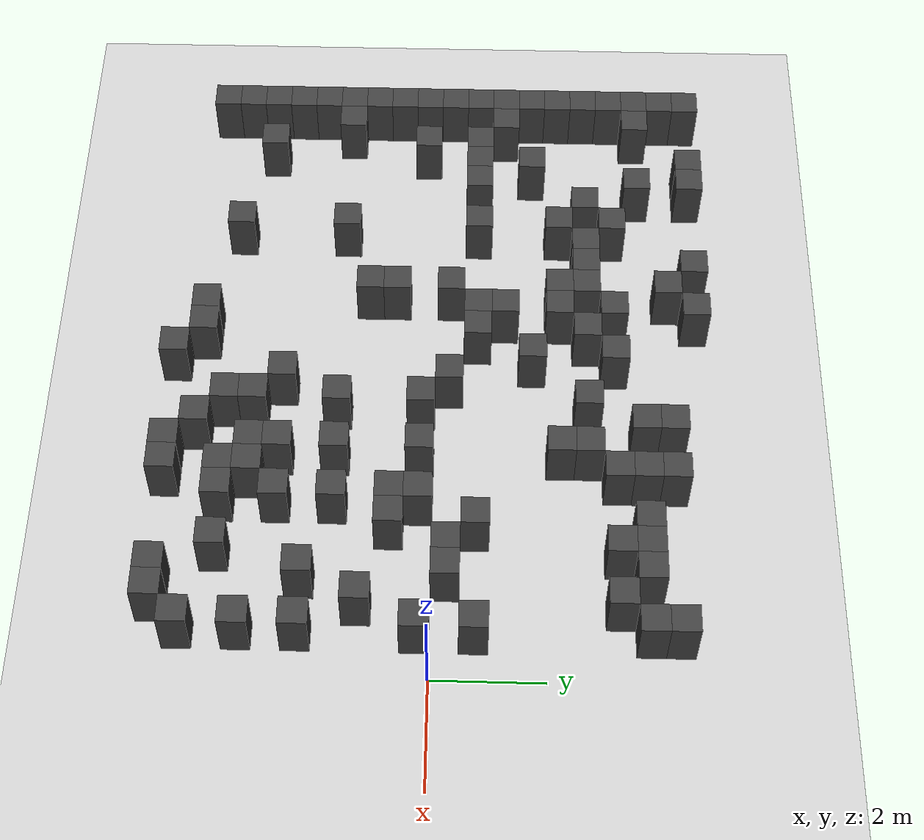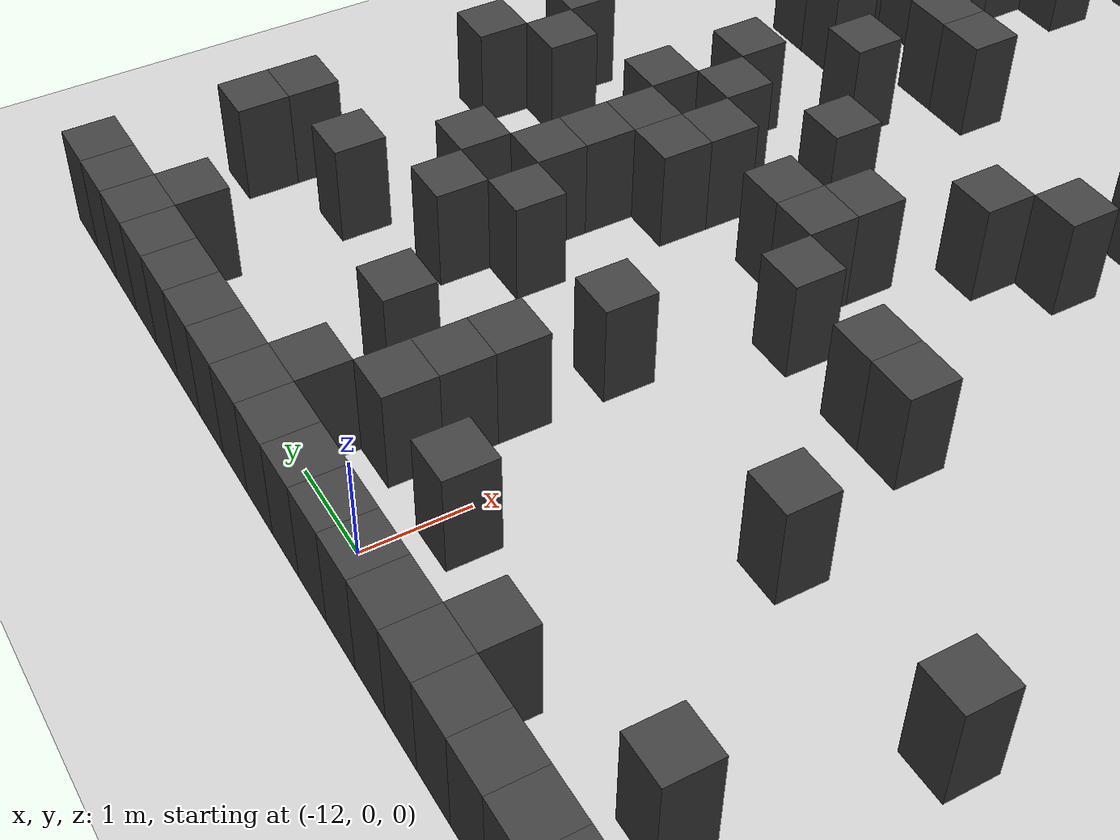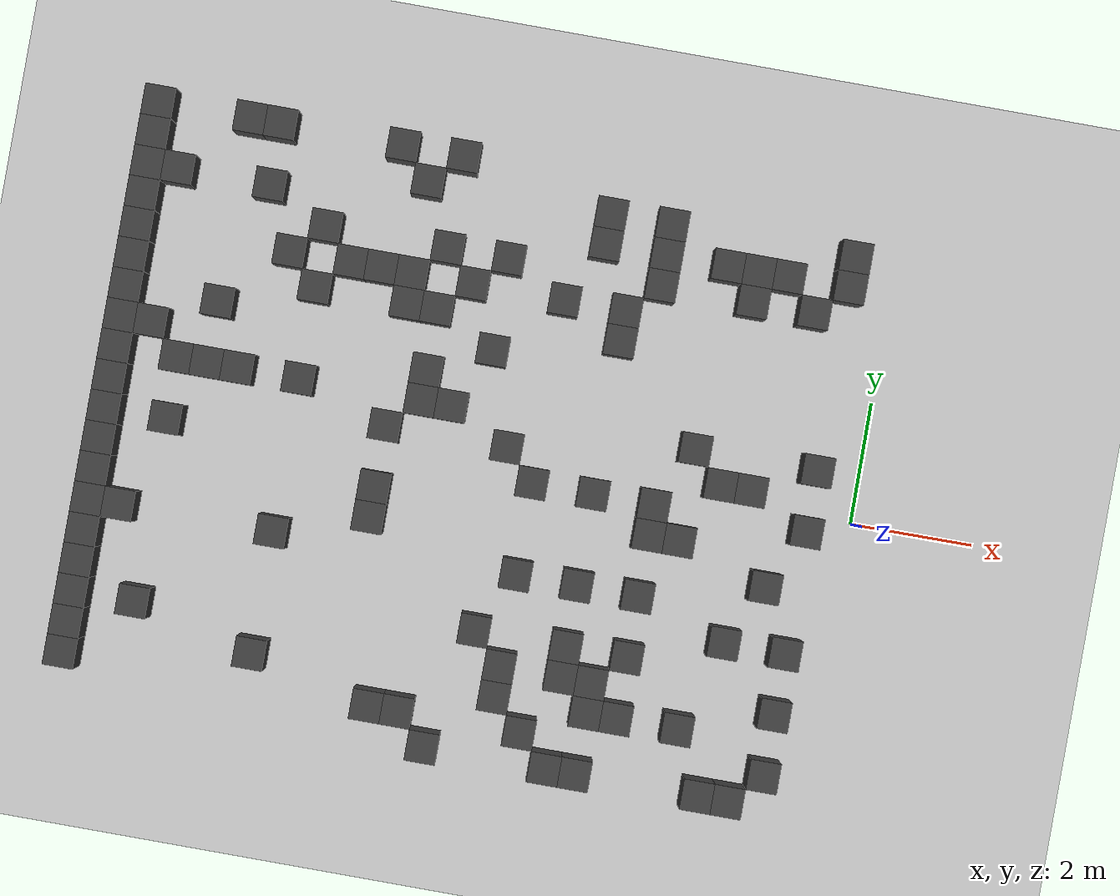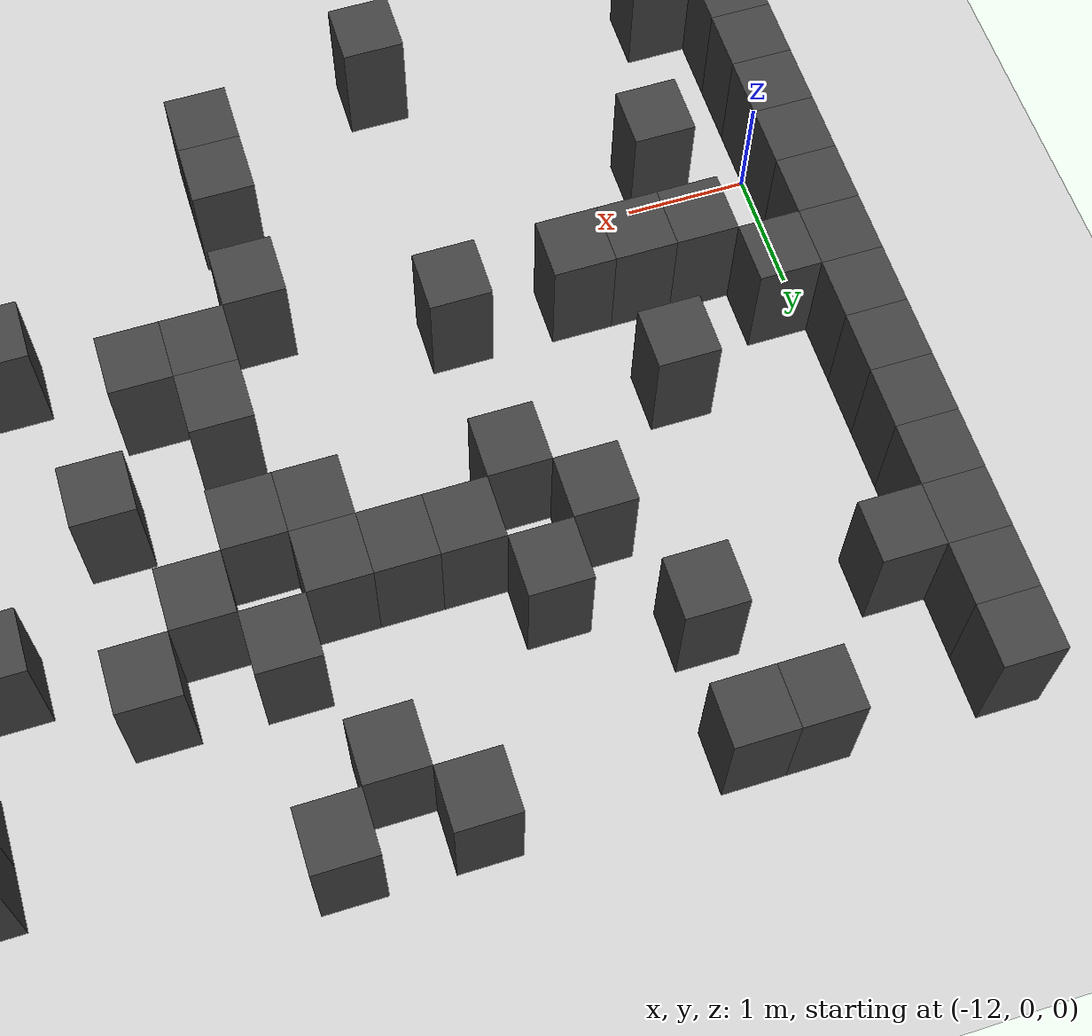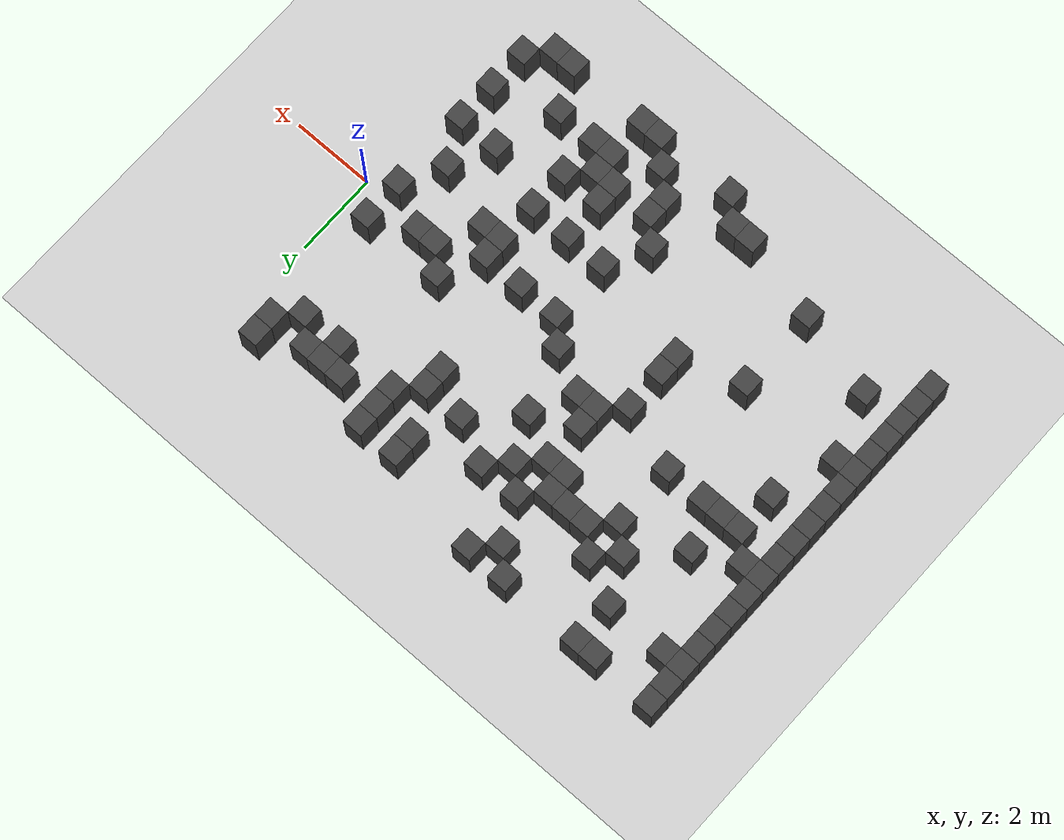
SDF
<sdf version="1.7">
 <world name="map_3955">
  <model name="ground_plane">
   <static>true</static>
   <link name="link">
    <collision name="collision">
     <geometry><plane><normal>0 0 1</normal><size>200 200</size></plane></geometry>
    </collision>
    <visual name="visual">
     <geometry><plane><normal>0 0 1</normal><size>200 200</size></plane></geometry>
     <material><ambient>0.8 0.8 0.8 1</ambient><diffuse>0.8 0.8 0.8 1</diffuse></material>
    </visual>
   </link>
  </model>
  <model name="maze_environment">
   <static>true</static>
   <link name="wall_212">
    <pose>-12.250 4.750 0.500 0 0 0</pose>
    <collision name="col"><geometry><box><size>0.5 0.5 1.0</size></box></geometry></collision>
    <visual name="vis">
     <geometry><box><size>0.5 0.5 1.0</size></box></geometry>
     <material><ambient>0.15 0.15 0.15 1</ambient><diffuse>0.25 0.25 0.25 1</diffuse></material>
    </visual>
   </link>
   <link name="wall_213">
    <pose>-10.750 4.750 0.500 0 0 0</pose>
    <collision name="col"><geometry><box><size>0.5 0.5 1.0</size></box></geometry></collision>
    <visual name="vis">
     <geometry><box><size>0.5 0.5 1.0</size></box></geometry>
     <material><ambient>0.15 0.15 0.15 1</ambient><diffuse>0.25 0.25 0.25 1</diffuse></material>
    </visual>
   </link>
   <link name="wall_214">
    <pose>-10.250 4.750 0.500 0 0 0</pose>
    <collision name="col"><geometry><box><size>0.5 0.5 1.0</size></box></geometry></collision>
    <visual name="vis">
     <geometry><box><size>0.5 0.5 1.0</size></box></geometry>
     <material><ambient>0.15 0.15 0.15 1</ambient><diffuse>0.25 0.25 0.25 1</diffuse></material>
    </visual>
   </link>
   <link name="wall_215">
    <pose>-8.250 4.750 0.500 0 0 0</pose>
    <collision name="col"><geometry><box><size>0.5 0.5 1.0</size></box></geometry></collision>
    <visual name="vis">
     <geometry><box><size>0.5 0.5 1.0</size></box></geometry>
     <material><ambient>0.15 0.15 0.15 1</ambient><diffuse>0.25 0.25 0.25 1</diffuse></material>
    </visual>
   </link>
   <link name="wall_216">
    <pose>-7.250 4.750 0.500 0 0 0</pose>
    <collision name="col"><geometry><box><size>0.5 0.5 1.0</size></box></geometry></collision>
    <visual name="vis">
     <geometry><box><size>0.5 0.5 1.0</size></box></geometry>
     <material><ambient>0.15 0.15 0.15 1</ambient><diffuse>0.25 0.25 0.25 1</diffuse></material>
    </visual>
   </link>
   <link name="wall_228">
    <pose>-12.250 4.250 0.500 0 0 0</pose>
    <collision name="col"><geometry><box><size>0.5 0.5 1.0</size></box></geometry></collision>
    <visual name="vis">
     <geometry><box><size>0.5 0.5 1.0</size></box></geometry>
     <material><ambient>0.15 0.15 0.15 1</ambient><diffuse>0.25 0.25 0.25 1</diffuse></material>
    </visual>
   </link>
   <link name="wall_229">
    <pose>-7.750 4.250 0.500 0 0 0</pose>
    <collision name="col"><geometry><box><size>0.5 0.5 1.0</size></box></geometry></collision>
    <visual name="vis">
     <geometry><box><size>0.5 0.5 1.0</size></box></geometry>
     <material><ambient>0.15 0.15 0.15 1</ambient><diffuse>0.25 0.25 0.25 1</diffuse></material>
    </visual>
   </link>
   <link name="wall_230">
    <pose>-4.750 4.250 0.500 0 0 0</pose>
    <collision name="col"><geometry><box><size>0.5 0.5 1.0</size></box></geometry></collision>
    <visual name="vis">
     <geometry><box><size>0.5 0.5 1.0</size></box></geometry>
     <material><ambient>0.15 0.15 0.15 1</ambient><diffuse>0.25 0.25 0.25 1</diffuse></material>
    </visual>
   </link>
   <link name="wall_231">
    <pose>-3.750 4.250 0.500 0 0 0</pose>
    <collision name="col"><geometry><box><size>0.5 0.5 1.0</size></box></geometry></collision>
    <visual name="vis">
     <geometry><box><size>0.5 0.5 1.0</size></box></geometry>
     <material><ambient>0.15 0.15 0.15 1</ambient><diffuse>0.25 0.25 0.25 1</diffuse></material>
    </visual>
   </link>
   <link name="wall_232">
    <pose>-0.750 4.250 0.500 0 0 0</pose>
    <collision name="col"><geometry><box><size>0.5 0.5 1.0</size></box></geometry></collision>
    <visual name="vis">
     <geometry><box><size>0.5 0.5 1.0</size></box></geometry>
     <material><ambient>0.15 0.15 0.15 1</ambient><diffuse>0.25 0.25 0.25 1</diffuse></material>
    </visual>
   </link>
   <link name="wall_241">
    <pose>-12.250 3.750 0.500 0 0 0</pose>
    <collision name="col"><geometry><box><size>0.5 0.5 1.0</size></box></geometry></collision>
    <visual name="vis">
     <geometry><box><size>0.5 0.5 1.0</size></box></geometry>
     <material><ambient>0.15 0.15 0.15 1</ambient><diffuse>0.25 0.25 0.25 1</diffuse></material>
    </visual>
   </link>
   <link name="wall_242">
    <pose>-11.750 3.750 0.500 0 0 0</pose>
    <collision name="col"><geometry><box><size>0.5 0.5 1.0</size></box></geometry></collision>
    <visual name="vis">
     <geometry><box><size>0.5 0.5 1.0</size></box></geometry>
     <material><ambient>0.15 0.15 0.15 1</ambient><diffuse>0.25 0.25 0.25 1</diffuse></material>
    </visual>
   </link>
   <link name="wall_243">
    <pose>-10.250 3.750 0.500 0 0 0</pose>
    <collision name="col"><geometry><box><size>0.5 0.5 1.0</size></box></geometry></collision>
    <visual name="vis">
     <geometry><box><size>0.5 0.5 1.0</size></box></geometry>
     <material><ambient>0.15 0.15 0.15 1</ambient><diffuse>0.25 0.25 0.25 1</diffuse></material>
    </visual>
   </link>
   <link name="wall_244">
    <pose>-4.750 3.750 0.500 0 0 0</pose>
    <collision name="col"><geometry><box><size>0.5 0.5 1.0</size></box></geometry></collision>
    <visual name="vis">
     <geometry><box><size>0.5 0.5 1.0</size></box></geometry>
     <material><ambient>0.15 0.15 0.15 1</ambient><diffuse>0.25 0.25 0.25 1</diffuse></material>
    </visual>
   </link>
   <link name="wall_245">
    <pose>-3.750 3.750 0.500 0 0 0</pose>
    <collision name="col"><geometry><box><size>0.5 0.5 1.0</size></box></geometry></collision>
    <visual name="vis">
     <geometry><box><size>0.5 0.5 1.0</size></box></geometry>
     <material><ambient>0.15 0.15 0.15 1</ambient><diffuse>0.25 0.25 0.25 1</diffuse></material>
    </visual>
   </link>
   <link name="wall_246">
    <pose>-2.750 3.750 0.500 0 0 0</pose>
    <collision name="col"><geometry><box><size>0.5 0.5 1.0</size></box></geometry></collision>
    <visual name="vis">
     <geometry><box><size>0.5 0.5 1.0</size></box></geometry>
     <material><ambient>0.15 0.15 0.15 1</ambient><diffuse>0.25 0.25 0.25 1</diffuse></material>
    </visual>
   </link>
   <link name="wall_247">
    <pose>-2.250 3.750 0.500 0 0 0</pose>
    <collision name="col"><geometry><box><size>0.5 0.5 1.0</size></box></geometry></collision>
    <visual name="vis">
     <geometry><box><size>0.5 0.5 1.0</size></box></geometry>
     <material><ambient>0.15 0.15 0.15 1</ambient><diffuse>0.25 0.25 0.25 1</diffuse></material>
    </visual>
   </link>
   <link name="wall_248">
    <pose>-1.750 3.750 0.500 0 0 0</pose>
    <collision name="col"><geometry><box><size>0.5 0.5 1.0</size></box></geometry></collision>
    <visual name="vis">
     <geometry><box><size>0.5 0.5 1.0</size></box></geometry>
     <material><ambient>0.15 0.15 0.15 1</ambient><diffuse>0.25 0.25 0.25 1</diffuse></material>
    </visual>
   </link>
   <link name="wall_249">
    <pose>-0.750 3.750 0.500 0 0 0</pose>
    <collision name="col"><geometry><box><size>0.5 0.5 1.0</size></box></geometry></collision>
    <visual name="vis">
     <geometry><box><size>0.5 0.5 1.0</size></box></geometry>
     <material><ambient>0.15 0.15 0.15 1</ambient><diffuse>0.25 0.25 0.25 1</diffuse></material>
    </visual>
   </link>
   <link name="wall_253">
    <pose>-12.250 3.250 0.500 0 0 0</pose>
    <collision name="col"><geometry><box><size>0.5 0.5 1.0</size></box></geometry></collision>
    <visual name="vis">
     <geometry><box><size>0.5 0.5 1.0</size></box></geometry>
     <material><ambient>0.15 0.15 0.15 1</ambient><diffuse>0.25 0.25 0.25 1</diffuse></material>
    </visual>
   </link>
   <link name="wall_254">
    <pose>-9.250 3.250 0.500 0 0 0</pose>
    <collision name="col"><geometry><box><size>0.5 0.5 1.0</size></box></geometry></collision>
    <visual name="vis">
     <geometry><box><size>0.5 0.5 1.0</size></box></geometry>
     <material><ambient>0.15 0.15 0.15 1</ambient><diffuse>0.25 0.25 0.25 1</diffuse></material>
    </visual>
   </link>
   <link name="wall_255">
    <pose>-7.250 3.250 0.500 0 0 0</pose>
    <collision name="col"><geometry><box><size>0.5 0.5 1.0</size></box></geometry></collision>
    <visual name="vis">
     <geometry><box><size>0.5 0.5 1.0</size></box></geometry>
     <material><ambient>0.15 0.15 0.15 1</ambient><diffuse>0.25 0.25 0.25 1</diffuse></material>
    </visual>
   </link>
   <link name="wall_256">
    <pose>-6.250 3.250 0.500 0 0 0</pose>
    <collision name="col"><geometry><box><size>0.5 0.5 1.0</size></box></geometry></collision>
    <visual name="vis">
     <geometry><box><size>0.5 0.5 1.0</size></box></geometry>
     <material><ambient>0.15 0.15 0.15 1</ambient><diffuse>0.25 0.25 0.25 1</diffuse></material>
    </visual>
   </link>
   <link name="wall_257">
    <pose>-3.750 3.250 0.500 0 0 0</pose>
    <collision name="col"><geometry><box><size>0.5 0.5 1.0</size></box></geometry></collision>
    <visual name="vis">
     <geometry><box><size>0.5 0.5 1.0</size></box></geometry>
     <material><ambient>0.15 0.15 0.15 1</ambient><diffuse>0.25 0.25 0.25 1</diffuse></material>
    </visual>
   </link>
   <link name="wall_258">
    <pose>-2.250 3.250 0.500 0 0 0</pose>
    <collision name="col"><geometry><box><size>0.5 0.5 1.0</size></box></geometry></collision>
    <visual name="vis">
     <geometry><box><size>0.5 0.5 1.0</size></box></geometry>
     <material><ambient>0.15 0.15 0.15 1</ambient><diffuse>0.25 0.25 0.25 1</diffuse></material>
    </visual>
   </link>
   <link name="wall_259">
    <pose>-1.250 3.250 0.500 0 0 0</pose>
    <collision name="col"><geometry><box><size>0.5 0.5 1.0</size></box></geometry></collision>
    <visual name="vis">
     <geometry><box><size>0.5 0.5 1.0</size></box></geometry>
     <material><ambient>0.15 0.15 0.15 1</ambient><diffuse>0.25 0.25 0.25 1</diffuse></material>
    </visual>
   </link>
   <link name="wall_264">
    <pose>-12.250 2.750 0.500 0 0 0</pose>
    <collision name="col"><geometry><box><size>0.5 0.5 1.0</size></box></geometry></collision>
    <visual name="vis">
     <geometry><box><size>0.5 0.5 1.0</size></box></geometry>
     <material><ambient>0.15 0.15 0.15 1</ambient><diffuse>0.25 0.25 0.25 1</diffuse></material>
    </visual>
   </link>
   <link name="wall_265">
    <pose>-9.750 2.750 0.500 0 0 0</pose>
    <collision name="col"><geometry><box><size>0.5 0.5 1.0</size></box></geometry></collision>
    <visual name="vis">
     <geometry><box><size>0.5 0.5 1.0</size></box></geometry>
     <material><ambient>0.15 0.15 0.15 1</ambient><diffuse>0.25 0.25 0.25 1</diffuse></material>
    </visual>
   </link>
   <link name="wall_266">
    <pose>-8.750 2.750 0.500 0 0 0</pose>
    <collision name="col"><geometry><box><size>0.5 0.5 1.0</size></box></geometry></collision>
    <visual name="vis">
     <geometry><box><size>0.5 0.5 1.0</size></box></geometry>
     <material><ambient>0.15 0.15 0.15 1</ambient><diffuse>0.25 0.25 0.25 1</diffuse></material>
    </visual>
   </link>
   <link name="wall_267">
    <pose>-8.250 2.750 0.500 0 0 0</pose>
    <collision name="col"><geometry><box><size>0.5 0.5 1.0</size></box></geometry></collision>
    <visual name="vis">
     <geometry><box><size>0.5 0.5 1.0</size></box></geometry>
     <material><ambient>0.15 0.15 0.15 1</ambient><diffuse>0.25 0.25 0.25 1</diffuse></material>
    </visual>
   </link>
   <link name="wall_268">
    <pose>-7.750 2.750 0.500 0 0 0</pose>
    <collision name="col"><geometry><box><size>0.5 0.5 1.0</size></box></geometry></collision>
    <visual name="vis">
     <geometry><box><size>0.5 0.5 1.0</size></box></geometry>
     <material><ambient>0.15 0.15 0.15 1</ambient><diffuse>0.25 0.25 0.25 1</diffuse></material>
    </visual>
   </link>
   <link name="wall_269">
    <pose>-6.750 2.750 0.500 0 0 0</pose>
    <collision name="col"><geometry><box><size>0.5 0.5 1.0</size></box></geometry></collision>
    <visual name="vis">
     <geometry><box><size>0.5 0.5 1.0</size></box></geometry>
     <material><ambient>0.15 0.15 0.15 1</ambient><diffuse>0.25 0.25 0.25 1</diffuse></material>
    </visual>
   </link>
   <link name="wall_270">
    <pose>-5.250 2.750 0.500 0 0 0</pose>
    <collision name="col"><geometry><box><size>0.5 0.5 1.0</size></box></geometry></collision>
    <visual name="vis">
     <geometry><box><size>0.5 0.5 1.0</size></box></geometry>
     <material><ambient>0.15 0.15 0.15 1</ambient><diffuse>0.25 0.25 0.25 1</diffuse></material>
    </visual>
   </link>
   <link name="wall_271">
    <pose>-4.250 2.750 0.500 0 0 0</pose>
    <collision name="col"><geometry><box><size>0.5 0.5 1.0</size></box></geometry></collision>
    <visual name="vis">
     <geometry><box><size>0.5 0.5 1.0</size></box></geometry>
     <material><ambient>0.15 0.15 0.15 1</ambient><diffuse>0.25 0.25 0.25 1</diffuse></material>
    </visual>
   </link>
   <link name="wall_279">
    <pose>-12.250 2.250 0.500 0 0 0</pose>
    <collision name="col"><geometry><box><size>0.5 0.5 1.0</size></box></geometry></collision>
    <visual name="vis">
     <geometry><box><size>0.5 0.5 1.0</size></box></geometry>
     <material><ambient>0.15 0.15 0.15 1</ambient><diffuse>0.25 0.25 0.25 1</diffuse></material>
    </visual>
   </link>
   <link name="wall_280">
    <pose>-9.250 2.250 0.500 0 0 0</pose>
    <collision name="col"><geometry><box><size>0.5 0.5 1.0</size></box></geometry></collision>
    <visual name="vis">
     <geometry><box><size>0.5 0.5 1.0</size></box></geometry>
     <material><ambient>0.15 0.15 0.15 1</ambient><diffuse>0.25 0.25 0.25 1</diffuse></material>
    </visual>
   </link>
   <link name="wall_281">
    <pose>-7.750 2.250 0.500 0 0 0</pose>
    <collision name="col"><geometry><box><size>0.5 0.5 1.0</size></box></geometry></collision>
    <visual name="vis">
     <geometry><box><size>0.5 0.5 1.0</size></box></geometry>
     <material><ambient>0.15 0.15 0.15 1</ambient><diffuse>0.25 0.25 0.25 1</diffuse></material>
    </visual>
   </link>
   <link name="wall_282">
    <pose>-7.250 2.250 0.500 0 0 0</pose>
    <collision name="col"><geometry><box><size>0.5 0.5 1.0</size></box></geometry></collision>
    <visual name="vis">
     <geometry><box><size>0.5 0.5 1.0</size></box></geometry>
     <material><ambient>0.15 0.15 0.15 1</ambient><diffuse>0.25 0.25 0.25 1</diffuse></material>
    </visual>
   </link>
   <link name="wall_283">
    <pose>-4.250 2.250 0.500 0 0 0</pose>
    <collision name="col"><geometry><box><size>0.5 0.5 1.0</size></box></geometry></collision>
    <visual name="vis">
     <geometry><box><size>0.5 0.5 1.0</size></box></geometry>
     <material><ambient>0.15 0.15 0.15 1</ambient><diffuse>0.25 0.25 0.25 1</diffuse></material>
    </visual>
   </link>
   <link name="wall_290">
    <pose>-12.250 1.750 0.500 0 0 0</pose>
    <collision name="col"><geometry><box><size>0.5 0.5 1.0</size></box></geometry></collision>
    <visual name="vis">
     <geometry><box><size>0.5 0.5 1.0</size></box></geometry>
     <material><ambient>0.15 0.15 0.15 1</ambient><diffuse>0.25 0.25 0.25 1</diffuse></material>
    </visual>
   </link>
   <link name="wall_291">
    <pose>-10.750 1.750 0.500 0 0 0</pose>
    <collision name="col"><geometry><box><size>0.5 0.5 1.0</size></box></geometry></collision>
    <visual name="vis">
     <geometry><box><size>0.5 0.5 1.0</size></box></geometry>
     <material><ambient>0.15 0.15 0.15 1</ambient><diffuse>0.25 0.25 0.25 1</diffuse></material>
    </visual>
   </link>
   <link name="wall_292">
    <pose>-6.250 1.750 0.500 0 0 0</pose>
    <collision name="col"><geometry><box><size>0.5 0.5 1.0</size></box></geometry></collision>
    <visual name="vis">
     <geometry><box><size>0.5 0.5 1.0</size></box></geometry>
     <material><ambient>0.15 0.15 0.15 1</ambient><diffuse>0.25 0.25 0.25 1</diffuse></material>
    </visual>
   </link>
   <link name="wall_297">
    <pose>-12.250 1.250 0.500 0 0 0</pose>
    <collision name="col"><geometry><box><size>0.5 0.5 1.0</size></box></geometry></collision>
    <visual name="vis">
     <geometry><box><size>0.5 0.5 1.0</size></box></geometry>
     <material><ambient>0.15 0.15 0.15 1</ambient><diffuse>0.25 0.25 0.25 1</diffuse></material>
    </visual>
   </link>
   <link name="wall_298">
    <pose>-11.750 1.250 0.500 0 0 0</pose>
    <collision name="col"><geometry><box><size>0.5 0.5 1.0</size></box></geometry></collision>
    <visual name="vis">
     <geometry><box><size>0.5 0.5 1.0</size></box></geometry>
     <material><ambient>0.15 0.15 0.15 1</ambient><diffuse>0.25 0.25 0.25 1</diffuse></material>
    </visual>
   </link>
   <link name="wall_299">
    <pose>-7.250 1.250 0.500 0 0 0</pose>
    <collision name="col"><geometry><box><size>0.5 0.5 1.0</size></box></geometry></collision>
    <visual name="vis">
     <geometry><box><size>0.5 0.5 1.0</size></box></geometry>
     <material><ambient>0.15 0.15 0.15 1</ambient><diffuse>0.25 0.25 0.25 1</diffuse></material>
    </visual>
   </link>
   <link name="wall_306">
    <pose>-12.250 0.750 0.500 0 0 0</pose>
    <collision name="col"><geometry><box><size>0.5 0.5 1.0</size></box></geometry></collision>
    <visual name="vis">
     <geometry><box><size>0.5 0.5 1.0</size></box></geometry>
     <material><ambient>0.15 0.15 0.15 1</ambient><diffuse>0.25 0.25 0.25 1</diffuse></material>
    </visual>
   </link>
   <link name="wall_307">
    <pose>-11.250 0.750 0.500 0 0 0</pose>
    <collision name="col"><geometry><box><size>0.5 0.5 1.0</size></box></geometry></collision>
    <visual name="vis">
     <geometry><box><size>0.5 0.5 1.0</size></box></geometry>
     <material><ambient>0.15 0.15 0.15 1</ambient><diffuse>0.25 0.25 0.25 1</diffuse></material>
    </visual>
   </link>
   <link name="wall_308">
    <pose>-10.750 0.750 0.500 0 0 0</pose>
    <collision name="col"><geometry><box><size>0.5 0.5 1.0</size></box></geometry></collision>
    <visual name="vis">
     <geometry><box><size>0.5 0.5 1.0</size></box></geometry>
     <material><ambient>0.15 0.15 0.15 1</ambient><diffuse>0.25 0.25 0.25 1</diffuse></material>
    </visual>
   </link>
   <link name="wall_309">
    <pose>-10.250 0.750 0.500 0 0 0</pose>
    <collision name="col"><geometry><box><size>0.5 0.5 1.0</size></box></geometry></collision>
    <visual name="vis">
     <geometry><box><size>0.5 0.5 1.0</size></box></geometry>
     <material><ambient>0.15 0.15 0.15 1</ambient><diffuse>0.25 0.25 0.25 1</diffuse></material>
    </visual>
   </link>
   <link name="wall_310">
    <pose>-9.250 0.750 0.500 0 0 0</pose>
    <collision name="col"><geometry><box><size>0.5 0.5 1.0</size></box></geometry></collision>
    <visual name="vis">
     <geometry><box><size>0.5 0.5 1.0</size></box></geometry>
     <material><ambient>0.15 0.15 0.15 1</ambient><diffuse>0.25 0.25 0.25 1</diffuse></material>
    </visual>
   </link>
   <link name="wall_311">
    <pose>-7.250 0.750 0.500 0 0 0</pose>
    <collision name="col"><geometry><box><size>0.5 0.5 1.0</size></box></geometry></collision>
    <visual name="vis">
     <geometry><box><size>0.5 0.5 1.0</size></box></geometry>
     <material><ambient>0.15 0.15 0.15 1</ambient><diffuse>0.25 0.25 0.25 1</diffuse></material>
    </visual>
   </link>
   <link name="wall_312">
    <pose>-6.750 0.750 0.500 0 0 0</pose>
    <collision name="col"><geometry><box><size>0.5 0.5 1.0</size></box></geometry></collision>
    <visual name="vis">
     <geometry><box><size>0.5 0.5 1.0</size></box></geometry>
     <material><ambient>0.15 0.15 0.15 1</ambient><diffuse>0.25 0.25 0.25 1</diffuse></material>
    </visual>
   </link>
   <link name="wall_313">
    <pose>-2.750 0.750 0.500 0 0 0</pose>
    <collision name="col"><geometry><box><size>0.5 0.5 1.0</size></box></geometry></collision>
    <visual name="vis">
     <geometry><box><size>0.5 0.5 1.0</size></box></geometry>
     <material><ambient>0.15 0.15 0.15 1</ambient><diffuse>0.25 0.25 0.25 1</diffuse></material>
    </visual>
   </link>
   <link name="wall_314">
    <pose>-0.750 0.750 0.500 0 0 0</pose>
    <collision name="col"><geometry><box><size>0.5 0.5 1.0</size></box></geometry></collision>
    <visual name="vis">
     <geometry><box><size>0.5 0.5 1.0</size></box></geometry>
     <material><ambient>0.15 0.15 0.15 1</ambient><diffuse>0.25 0.25 0.25 1</diffuse></material>
    </visual>
   </link>
   <link name="wall_316">
    <pose>-12.250 0.250 0.500 0 0 0</pose>
    <collision name="col"><geometry><box><size>0.5 0.5 1.0</size></box></geometry></collision>
    <visual name="vis">
     <geometry><box><size>0.5 0.5 1.0</size></box></geometry>
     <material><ambient>0.15 0.15 0.15 1</ambient><diffuse>0.25 0.25 0.25 1</diffuse></material>
    </visual>
   </link>
   <link name="wall_317">
    <pose>-7.750 0.250 0.500 0 0 0</pose>
    <collision name="col"><geometry><box><size>0.5 0.5 1.0</size></box></geometry></collision>
    <visual name="vis">
     <geometry><box><size>0.5 0.5 1.0</size></box></geometry>
     <material><ambient>0.15 0.15 0.15 1</ambient><diffuse>0.25 0.25 0.25 1</diffuse></material>
    </visual>
   </link>
   <link name="wall_318">
    <pose>-5.750 0.250 0.500 0 0 0</pose>
    <collision name="col"><geometry><box><size>0.5 0.5 1.0</size></box></geometry></collision>
    <visual name="vis">
     <geometry><box><size>0.5 0.5 1.0</size></box></geometry>
     <material><ambient>0.15 0.15 0.15 1</ambient><diffuse>0.25 0.25 0.25 1</diffuse></material>
    </visual>
   </link>
   <link name="wall_319">
    <pose>-2.250 0.250 0.500 0 0 0</pose>
    <collision name="col"><geometry><box><size>0.5 0.5 1.0</size></box></geometry></collision>
    <visual name="vis">
     <geometry><box><size>0.5 0.5 1.0</size></box></geometry>
     <material><ambient>0.15 0.15 0.15 1</ambient><diffuse>0.25 0.25 0.25 1</diffuse></material>
    </visual>
   </link>
   <link name="wall_320">
    <pose>-1.750 0.250 0.500 0 0 0</pose>
    <collision name="col"><geometry><box><size>0.5 0.5 1.0</size></box></geometry></collision>
    <visual name="vis">
     <geometry><box><size>0.5 0.5 1.0</size></box></geometry>
     <material><ambient>0.15 0.15 0.15 1</ambient><diffuse>0.25 0.25 0.25 1</diffuse></material>
    </visual>
   </link>
   <link name="wall_325">
    <pose>-12.250 -0.250 0.500 0 0 0</pose>
    <collision name="col"><geometry><box><size>0.5 0.5 1.0</size></box></geometry></collision>
    <visual name="vis">
     <geometry><box><size>0.5 0.5 1.0</size></box></geometry>
     <material><ambient>0.15 0.15 0.15 1</ambient><diffuse>0.25 0.25 0.25 1</diffuse></material>
    </visual>
   </link>
   <link name="wall_326">
    <pose>-11.250 -0.250 0.500 0 0 0</pose>
    <collision name="col"><geometry><box><size>0.5 0.5 1.0</size></box></geometry></collision>
    <visual name="vis">
     <geometry><box><size>0.5 0.5 1.0</size></box></geometry>
     <material><ambient>0.15 0.15 0.15 1</ambient><diffuse>0.25 0.25 0.25 1</diffuse></material>
    </visual>
   </link>
   <link name="wall_327">
    <pose>-5.250 -0.250 0.500 0 0 0</pose>
    <collision name="col"><geometry><box><size>0.5 0.5 1.0</size></box></geometry></collision>
    <visual name="vis">
     <geometry><box><size>0.5 0.5 1.0</size></box></geometry>
     <material><ambient>0.15 0.15 0.15 1</ambient><diffuse>0.25 0.25 0.25 1</diffuse></material>
    </visual>
   </link>
   <link name="wall_328">
    <pose>-4.250 -0.250 0.500 0 0 0</pose>
    <collision name="col"><geometry><box><size>0.5 0.5 1.0</size></box></geometry></collision>
    <visual name="vis">
     <geometry><box><size>0.5 0.5 1.0</size></box></geometry>
     <material><ambient>0.15 0.15 0.15 1</ambient><diffuse>0.25 0.25 0.25 1</diffuse></material>
    </visual>
   </link>
   <link name="wall_329">
    <pose>-3.250 -0.250 0.500 0 0 0</pose>
    <collision name="col"><geometry><box><size>0.5 0.5 1.0</size></box></geometry></collision>
    <visual name="vis">
     <geometry><box><size>0.5 0.5 1.0</size></box></geometry>
     <material><ambient>0.15 0.15 0.15 1</ambient><diffuse>0.25 0.25 0.25 1</diffuse></material>
    </visual>
   </link>
   <link name="wall_330">
    <pose>-0.750 -0.250 0.500 0 0 0</pose>
    <collision name="col"><geometry><box><size>0.5 0.5 1.0</size></box></geometry></collision>
    <visual name="vis">
     <geometry><box><size>0.5 0.5 1.0</size></box></geometry>
     <material><ambient>0.15 0.15 0.15 1</ambient><diffuse>0.25 0.25 0.25 1</diffuse></material>
    </visual>
   </link>
   <link name="wall_333">
    <pose>-12.250 -0.750 0.500 0 0 0</pose>
    <collision name="col"><geometry><box><size>0.5 0.5 1.0</size></box></geometry></collision>
    <visual name="vis">
     <geometry><box><size>0.5 0.5 1.0</size></box></geometry>
     <material><ambient>0.15 0.15 0.15 1</ambient><diffuse>0.25 0.25 0.25 1</diffuse></material>
    </visual>
   </link>
   <link name="wall_334">
    <pose>-7.750 -0.750 0.500 0 0 0</pose>
    <collision name="col"><geometry><box><size>0.5 0.5 1.0</size></box></geometry></collision>
    <visual name="vis">
     <geometry><box><size>0.5 0.5 1.0</size></box></geometry>
     <material><ambient>0.15 0.15 0.15 1</ambient><diffuse>0.25 0.25 0.25 1</diffuse></material>
    </visual>
   </link>
   <link name="wall_335">
    <pose>-3.250 -0.750 0.500 0 0 0</pose>
    <collision name="col"><geometry><box><size>0.5 0.5 1.0</size></box></geometry></collision>
    <visual name="vis">
     <geometry><box><size>0.5 0.5 1.0</size></box></geometry>
     <material><ambient>0.15 0.15 0.15 1</ambient><diffuse>0.25 0.25 0.25 1</diffuse></material>
    </visual>
   </link>
   <link name="wall_336">
    <pose>-2.750 -0.750 0.500 0 0 0</pose>
    <collision name="col"><geometry><box><size>0.5 0.5 1.0</size></box></geometry></collision>
    <visual name="vis">
     <geometry><box><size>0.5 0.5 1.0</size></box></geometry>
     <material><ambient>0.15 0.15 0.15 1</ambient><diffuse>0.25 0.25 0.25 1</diffuse></material>
    </visual>
   </link>
   <link name="wall_339">
    <pose>-12.250 -1.250 0.500 0 0 0</pose>
    <collision name="col"><geometry><box><size>0.5 0.5 1.0</size></box></geometry></collision>
    <visual name="vis">
     <geometry><box><size>0.5 0.5 1.0</size></box></geometry>
     <material><ambient>0.15 0.15 0.15 1</ambient><diffuse>0.25 0.25 0.25 1</diffuse></material>
    </visual>
   </link>
   <link name="wall_340">
    <pose>-7.750 -1.250 0.500 0 0 0</pose>
    <collision name="col"><geometry><box><size>0.5 0.5 1.0</size></box></geometry></collision>
    <visual name="vis">
     <geometry><box><size>0.5 0.5 1.0</size></box></geometry>
     <material><ambient>0.15 0.15 0.15 1</ambient><diffuse>0.25 0.25 0.25 1</diffuse></material>
    </visual>
   </link>
   <link name="wall_341">
    <pose>-1.250 -1.250 0.500 0 0 0</pose>
    <collision name="col"><geometry><box><size>0.5 0.5 1.0</size></box></geometry></collision>
    <visual name="vis">
     <geometry><box><size>0.5 0.5 1.0</size></box></geometry>
     <material><ambient>0.15 0.15 0.15 1</ambient><diffuse>0.25 0.25 0.25 1</diffuse></material>
    </visual>
   </link>
   <link name="wall_350">
    <pose>-12.250 -1.750 0.500 0 0 0</pose>
    <collision name="col"><geometry><box><size>0.5 0.5 1.0</size></box></geometry></collision>
    <visual name="vis">
     <geometry><box><size>0.5 0.5 1.0</size></box></geometry>
     <material><ambient>0.15 0.15 0.15 1</ambient><diffuse>0.25 0.25 0.25 1</diffuse></material>
    </visual>
   </link>
   <link name="wall_351">
    <pose>-11.750 -1.750 0.500 0 0 0</pose>
    <collision name="col"><geometry><box><size>0.5 0.5 1.0</size></box></geometry></collision>
    <visual name="vis">
     <geometry><box><size>0.5 0.5 1.0</size></box></geometry>
     <material><ambient>0.15 0.15 0.15 1</ambient><diffuse>0.25 0.25 0.25 1</diffuse></material>
    </visual>
   </link>
   <link name="wall_352">
    <pose>-9.250 -1.750 0.500 0 0 0</pose>
    <collision name="col"><geometry><box><size>0.5 0.5 1.0</size></box></geometry></collision>
    <visual name="vis">
     <geometry><box><size>0.5 0.5 1.0</size></box></geometry>
     <material><ambient>0.15 0.15 0.15 1</ambient><diffuse>0.25 0.25 0.25 1</diffuse></material>
    </visual>
   </link>
   <link name="wall_353">
    <pose>-5.250 -1.750 0.500 0 0 0</pose>
    <collision name="col"><geometry><box><size>0.5 0.5 1.0</size></box></geometry></collision>
    <visual name="vis">
     <geometry><box><size>0.5 0.5 1.0</size></box></geometry>
     <material><ambient>0.15 0.15 0.15 1</ambient><diffuse>0.25 0.25 0.25 1</diffuse></material>
    </visual>
   </link>
   <link name="wall_354">
    <pose>-4.250 -1.750 0.500 0 0 0</pose>
    <collision name="col"><geometry><box><size>0.5 0.5 1.0</size></box></geometry></collision>
    <visual name="vis">
     <geometry><box><size>0.5 0.5 1.0</size></box></geometry>
     <material><ambient>0.15 0.15 0.15 1</ambient><diffuse>0.25 0.25 0.25 1</diffuse></material>
    </visual>
   </link>
   <link name="wall_355">
    <pose>-3.250 -1.750 0.500 0 0 0</pose>
    <collision name="col"><geometry><box><size>0.5 0.5 1.0</size></box></geometry></collision>
    <visual name="vis">
     <geometry><box><size>0.5 0.5 1.0</size></box></geometry>
     <material><ambient>0.15 0.15 0.15 1</ambient><diffuse>0.25 0.25 0.25 1</diffuse></material>
    </visual>
   </link>
   <link name="wall_362">
    <pose>-12.250 -2.250 0.500 0 0 0</pose>
    <collision name="col"><geometry><box><size>0.5 0.5 1.0</size></box></geometry></collision>
    <visual name="vis">
     <geometry><box><size>0.5 0.5 1.0</size></box></geometry>
     <material><ambient>0.15 0.15 0.15 1</ambient><diffuse>0.25 0.25 0.25 1</diffuse></material>
    </visual>
   </link>
   <link name="wall_363">
    <pose>-1.750 -2.250 0.500 0 0 0</pose>
    <collision name="col"><geometry><box><size>0.5 0.5 1.0</size></box></geometry></collision>
    <visual name="vis">
     <geometry><box><size>0.5 0.5 1.0</size></box></geometry>
     <material><ambient>0.15 0.15 0.15 1</ambient><diffuse>0.25 0.25 0.25 1</diffuse></material>
    </visual>
   </link>
   <link name="wall_364">
    <pose>-0.750 -2.250 0.500 0 0 0</pose>
    <collision name="col"><geometry><box><size>0.5 0.5 1.0</size></box></geometry></collision>
    <visual name="vis">
     <geometry><box><size>0.5 0.5 1.0</size></box></geometry>
     <material><ambient>0.15 0.15 0.15 1</ambient><diffuse>0.25 0.25 0.25 1</diffuse></material>
    </visual>
   </link>
   <link name="wall_372">
    <pose>-12.250 -2.750 0.500 0 0 0</pose>
    <collision name="col"><geometry><box><size>0.5 0.5 1.0</size></box></geometry></collision>
    <visual name="vis">
     <geometry><box><size>0.5 0.5 1.0</size></box></geometry>
     <material><ambient>0.15 0.15 0.15 1</ambient><diffuse>0.25 0.25 0.25 1</diffuse></material>
    </visual>
   </link>
   <link name="wall_373">
    <pose>-5.750 -2.750 0.500 0 0 0</pose>
    <collision name="col"><geometry><box><size>0.5 0.5 1.0</size></box></geometry></collision>
    <visual name="vis">
     <geometry><box><size>0.5 0.5 1.0</size></box></geometry>
     <material><ambient>0.15 0.15 0.15 1</ambient><diffuse>0.25 0.25 0.25 1</diffuse></material>
    </visual>
   </link>
   <link name="wall_374">
    <pose>-4.250 -2.750 0.500 0 0 0</pose>
    <collision name="col"><geometry><box><size>0.5 0.5 1.0</size></box></geometry></collision>
    <visual name="vis">
     <geometry><box><size>0.5 0.5 1.0</size></box></geometry>
     <material><ambient>0.15 0.15 0.15 1</ambient><diffuse>0.25 0.25 0.25 1</diffuse></material>
    </visual>
   </link>
   <link name="wall_375">
    <pose>-3.250 -2.750 0.500 0 0 0</pose>
    <collision name="col"><geometry><box><size>0.5 0.5 1.0</size></box></geometry></collision>
    <visual name="vis">
     <geometry><box><size>0.5 0.5 1.0</size></box></geometry>
     <material><ambient>0.15 0.15 0.15 1</ambient><diffuse>0.25 0.25 0.25 1</diffuse></material>
    </visual>
   </link>
   <link name="wall_383">
    <pose>-12.250 -3.250 0.500 0 0 0</pose>
    <collision name="col"><geometry><box><size>0.5 0.5 1.0</size></box></geometry></collision>
    <visual name="vis">
     <geometry><box><size>0.5 0.5 1.0</size></box></geometry>
     <material><ambient>0.15 0.15 0.15 1</ambient><diffuse>0.25 0.25 0.25 1</diffuse></material>
    </visual>
   </link>
   <link name="wall_384">
    <pose>-11.250 -3.250 0.500 0 0 0</pose>
    <collision name="col"><geometry><box><size>0.5 0.5 1.0</size></box></geometry></collision>
    <visual name="vis">
     <geometry><box><size>0.5 0.5 1.0</size></box></geometry>
     <material><ambient>0.15 0.15 0.15 1</ambient><diffuse>0.25 0.25 0.25 1</diffuse></material>
    </visual>
   </link>
   <link name="wall_385">
    <pose>-5.250 -3.250 0.500 0 0 0</pose>
    <collision name="col"><geometry><box><size>0.5 0.5 1.0</size></box></geometry></collision>
    <visual name="vis">
     <geometry><box><size>0.5 0.5 1.0</size></box></geometry>
     <material><ambient>0.15 0.15 0.15 1</ambient><diffuse>0.25 0.25 0.25 1</diffuse></material>
    </visual>
   </link>
   <link name="wall_386">
    <pose>-4.250 -3.250 0.500 0 0 0</pose>
    <collision name="col"><geometry><box><size>0.5 0.5 1.0</size></box></geometry></collision>
    <visual name="vis">
     <geometry><box><size>0.5 0.5 1.0</size></box></geometry>
     <material><ambient>0.15 0.15 0.15 1</ambient><diffuse>0.25 0.25 0.25 1</diffuse></material>
    </visual>
   </link>
   <link name="wall_387">
    <pose>-3.750 -3.250 0.500 0 0 0</pose>
    <collision name="col"><geometry><box><size>0.5 0.5 1.0</size></box></geometry></collision>
    <visual name="vis">
     <geometry><box><size>0.5 0.5 1.0</size></box></geometry>
     <material><ambient>0.15 0.15 0.15 1</ambient><diffuse>0.25 0.25 0.25 1</diffuse></material>
    </visual>
   </link>
   <link name="wall_388">
    <pose>-0.750 -3.250 0.500 0 0 0</pose>
    <collision name="col"><geometry><box><size>0.5 0.5 1.0</size></box></geometry></collision>
    <visual name="vis">
     <geometry><box><size>0.5 0.5 1.0</size></box></geometry>
     <material><ambient>0.15 0.15 0.15 1</ambient><diffuse>0.25 0.25 0.25 1</diffuse></material>
    </visual>
   </link>
   <link name="wall_392">
    <pose>-12.250 -3.750 0.500 0 0 0</pose>
    <collision name="col"><geometry><box><size>0.5 0.5 1.0</size></box></geometry></collision>
    <visual name="vis">
     <geometry><box><size>0.5 0.5 1.0</size></box></geometry>
     <material><ambient>0.15 0.15 0.15 1</ambient><diffuse>0.25 0.25 0.25 1</diffuse></material>
    </visual>
   </link>
   <link name="wall_393">
    <pose>-9.250 -3.750 0.500 0 0 0</pose>
    <collision name="col"><geometry><box><size>0.5 0.5 1.0</size></box></geometry></collision>
    <visual name="vis">
     <geometry><box><size>0.5 0.5 1.0</size></box></geometry>
     <material><ambient>0.15 0.15 0.15 1</ambient><diffuse>0.25 0.25 0.25 1</diffuse></material>
    </visual>
   </link>
   <link name="wall_394">
    <pose>-5.250 -3.750 0.500 0 0 0</pose>
    <collision name="col"><geometry><box><size>0.5 0.5 1.0</size></box></geometry></collision>
    <visual name="vis">
     <geometry><box><size>0.5 0.5 1.0</size></box></geometry>
     <material><ambient>0.15 0.15 0.15 1</ambient><diffuse>0.25 0.25 0.25 1</diffuse></material>
    </visual>
   </link>
   <link name="wall_395">
    <pose>-3.750 -3.750 0.500 0 0 0</pose>
    <collision name="col"><geometry><box><size>0.5 0.5 1.0</size></box></geometry></collision>
    <visual name="vis">
     <geometry><box><size>0.5 0.5 1.0</size></box></geometry>
     <material><ambient>0.15 0.15 0.15 1</ambient><diffuse>0.25 0.25 0.25 1</diffuse></material>
    </visual>
   </link>
   <link name="wall_396">
    <pose>-3.250 -3.750 0.500 0 0 0</pose>
    <collision name="col"><geometry><box><size>0.5 0.5 1.0</size></box></geometry></collision>
    <visual name="vis">
     <geometry><box><size>0.5 0.5 1.0</size></box></geometry>
     <material><ambient>0.15 0.15 0.15 1</ambient><diffuse>0.25 0.25 0.25 1</diffuse></material>
    </visual>
   </link>
   <link name="wall_397">
    <pose>-2.250 -3.750 0.500 0 0 0</pose>
    <collision name="col"><geometry><box><size>0.5 0.5 1.0</size></box></geometry></collision>
    <visual name="vis">
     <geometry><box><size>0.5 0.5 1.0</size></box></geometry>
     <material><ambient>0.15 0.15 0.15 1</ambient><diffuse>0.25 0.25 0.25 1</diffuse></material>
    </visual>
   </link>
   <link name="wall_404">
    <pose>-12.250 -4.250 0.500 0 0 0</pose>
    <collision name="col"><geometry><box><size>0.5 0.5 1.0</size></box></geometry></collision>
    <visual name="vis">
     <geometry><box><size>0.5 0.5 1.0</size></box></geometry>
     <material><ambient>0.15 0.15 0.15 1</ambient><diffuse>0.25 0.25 0.25 1</diffuse></material>
    </visual>
   </link>
   <link name="wall_405">
    <pose>-7.250 -4.250 0.500 0 0 0</pose>
    <collision name="col"><geometry><box><size>0.5 0.5 1.0</size></box></geometry></collision>
    <visual name="vis">
     <geometry><box><size>0.5 0.5 1.0</size></box></geometry>
     <material><ambient>0.15 0.15 0.15 1</ambient><diffuse>0.25 0.25 0.25 1</diffuse></material>
    </visual>
   </link>
   <link name="wall_406">
    <pose>-6.750 -4.250 0.500 0 0 0</pose>
    <collision name="col"><geometry><box><size>0.5 0.5 1.0</size></box></geometry></collision>
    <visual name="vis">
     <geometry><box><size>0.5 0.5 1.0</size></box></geometry>
     <material><ambient>0.15 0.15 0.15 1</ambient><diffuse>0.25 0.25 0.25 1</diffuse></material>
    </visual>
   </link>
   <link name="wall_407">
    <pose>-4.750 -4.250 0.500 0 0 0</pose>
    <collision name="col"><geometry><box><size>0.5 0.5 1.0</size></box></geometry></collision>
    <visual name="vis">
     <geometry><box><size>0.5 0.5 1.0</size></box></geometry>
     <material><ambient>0.15 0.15 0.15 1</ambient><diffuse>0.25 0.25 0.25 1</diffuse></material>
    </visual>
   </link>
   <link name="wall_408">
    <pose>-0.750 -4.250 0.500 0 0 0</pose>
    <collision name="col"><geometry><box><size>0.5 0.5 1.0</size></box></geometry></collision>
    <visual name="vis">
     <geometry><box><size>0.5 0.5 1.0</size></box></geometry>
     <material><ambient>0.15 0.15 0.15 1</ambient><diffuse>0.25 0.25 0.25 1</diffuse></material>
    </visual>
   </link>
   <link name="wall_418">
    <pose>-6.250 -4.750 0.500 0 0 0</pose>
    <collision name="col"><geometry><box><size>0.5 0.5 1.0</size></box></geometry></collision>
    <visual name="vis">
     <geometry><box><size>0.5 0.5 1.0</size></box></geometry>
     <material><ambient>0.15 0.15 0.15 1</ambient><diffuse>0.25 0.25 0.25 1</diffuse></material>
    </visual>
   </link>
   <link name="wall_419">
    <pose>-4.250 -4.750 0.500 0 0 0</pose>
    <collision name="col"><geometry><box><size>0.5 0.5 1.0</size></box></geometry></collision>
    <visual name="vis">
     <geometry><box><size>0.5 0.5 1.0</size></box></geometry>
     <material><ambient>0.15 0.15 0.15 1</ambient><diffuse>0.25 0.25 0.25 1</diffuse></material>
    </visual>
   </link>
   <link name="wall_420">
    <pose>-3.750 -4.750 0.500 0 0 0</pose>
    <collision name="col"><geometry><box><size>0.5 0.5 1.0</size></box></geometry></collision>
    <visual name="vis">
     <geometry><box><size>0.5 0.5 1.0</size></box></geometry>
     <material><ambient>0.15 0.15 0.15 1</ambient><diffuse>0.25 0.25 0.25 1</diffuse></material>
    </visual>
   </link>
   <link name="wall_421">
    <pose>-1.750 -4.750 0.500 0 0 0</pose>
    <collision name="col"><geometry><box><size>0.5 0.5 1.0</size></box></geometry></collision>
    <visual name="vis">
     <geometry><box><size>0.5 0.5 1.0</size></box></geometry>
     <material><ambient>0.15 0.15 0.15 1</ambient><diffuse>0.25 0.25 0.25 1</diffuse></material>
    </visual>
   </link>
   <link name="wall_422">
    <pose>-1.250 -4.750 0.500 0 0 0</pose>
    <collision name="col"><geometry><box><size>0.5 0.5 1.0</size></box></geometry></collision>
    <visual name="vis">
     <geometry><box><size>0.5 0.5 1.0</size></box></geometry>
     <material><ambient>0.15 0.15 0.15 1</ambient><diffuse>0.25 0.25 0.25 1</diffuse></material>
    </visual>
   </link>
  </model>
 </world>
</sdf>
